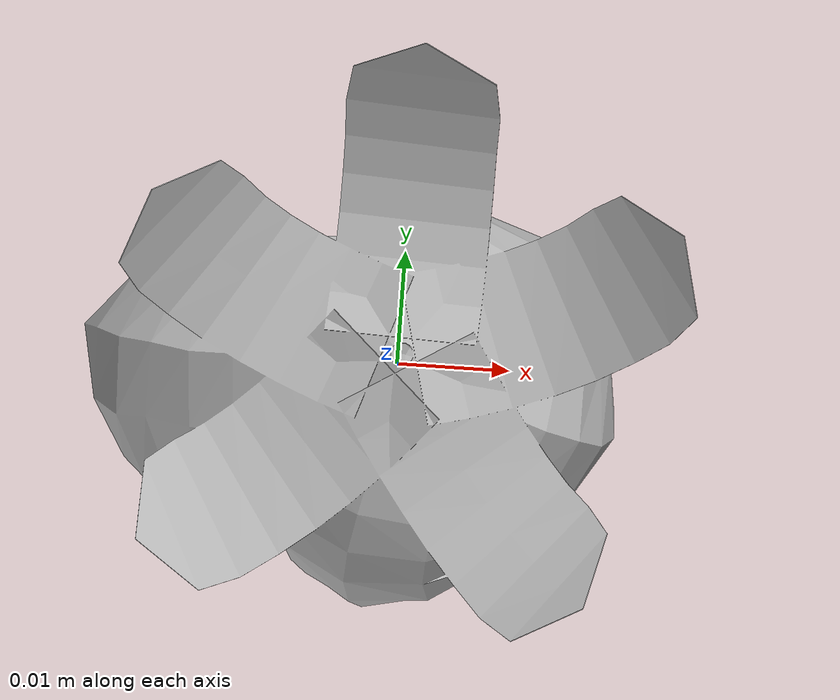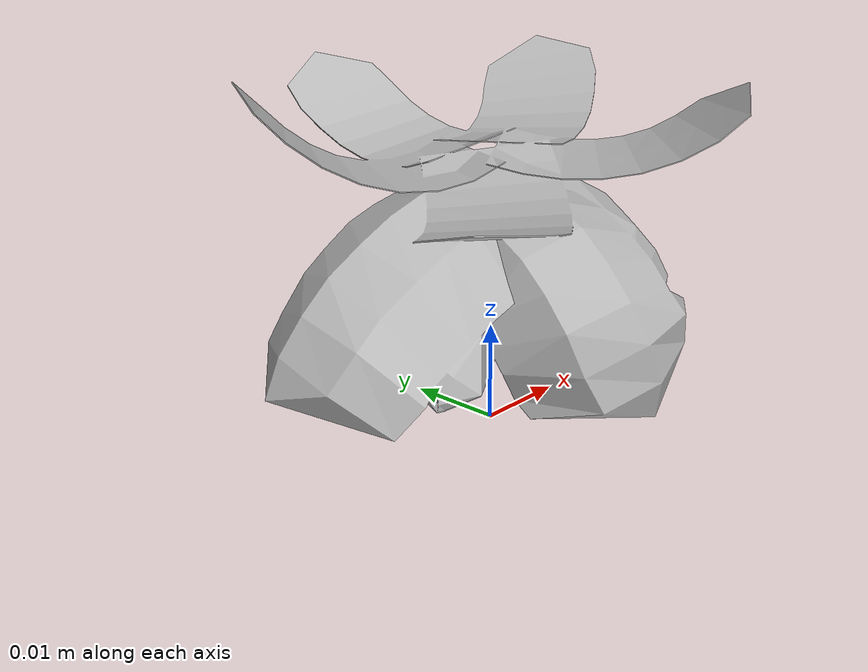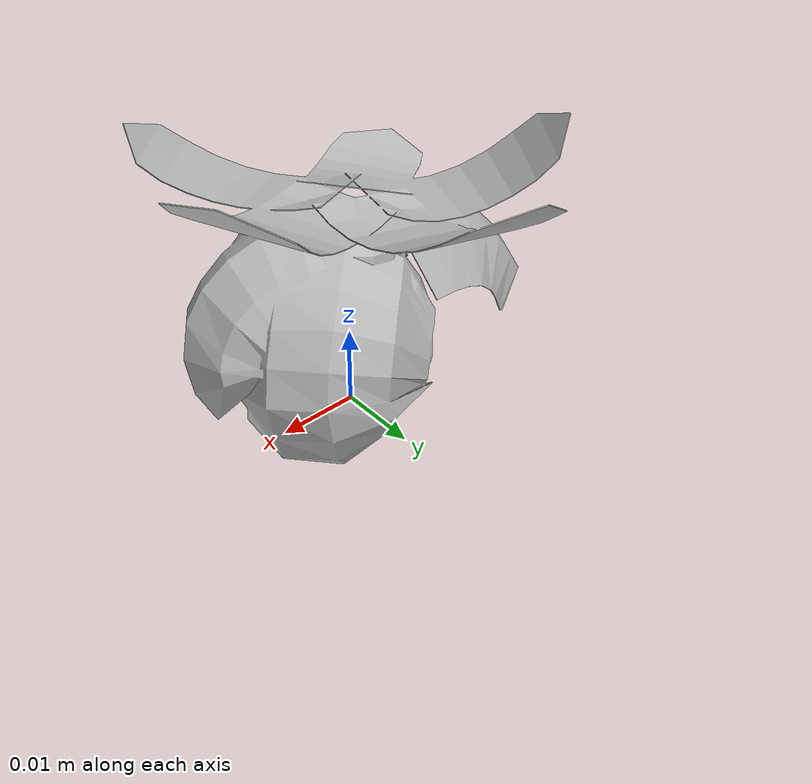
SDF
<?xml version='1.0'?>
<sdf version="1.5">
  <model name="strawberry_flower_02">
    <pose>0 0 0.02 3.14 0 0</pose>
    <static>false</static>
    <link name="link">
      <inertial>
        <mass>0.01</mass>
        <inertia>
          <ixx>0.000001397</ixx>
          <iyy>0.000001397</iyy>
          <izz>0.000000919</izz>
        </inertia>
      </inertial>
      <collision name="collision">
        <geometry>
          <mesh>
            <uri>model://strawberry_flower_02/meshes/visual.dae</uri>
          </mesh>
        </geometry>
      </collision>
      <visual name="visual">
        <geometry>
          <mesh>
            <uri>model://strawberry_flower_02/meshes/visual.dae</uri>
          </mesh>
        </geometry>
        <material>
          <script>
            <uri>model://strawberry_flower_02/materials/scripts</uri>
            <uri>model://strawberry_flower_02/materials/textures</uri>
            <name>strawberry_flower_02</name>
          </script>
        </material>
      </visual>
    </link>
  </model>
</sdf>
